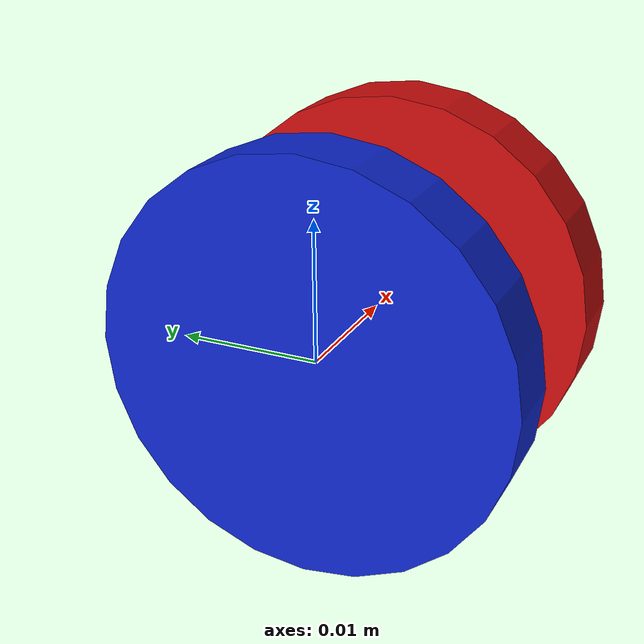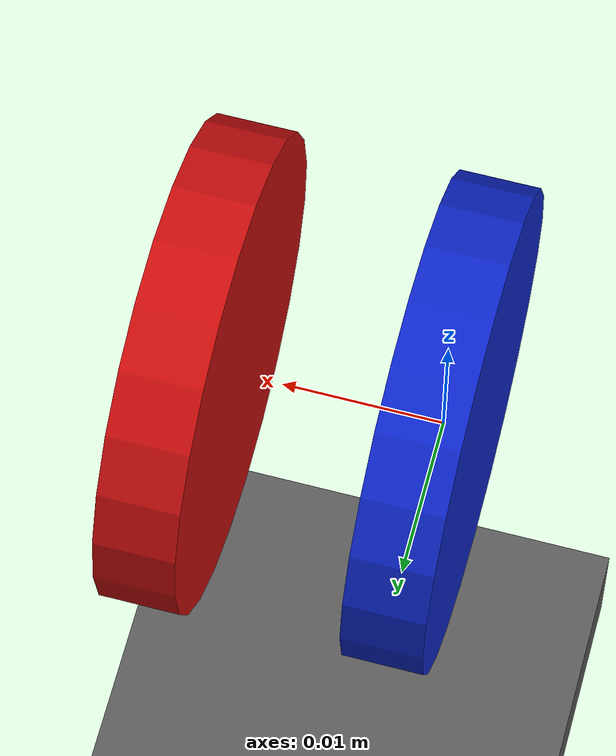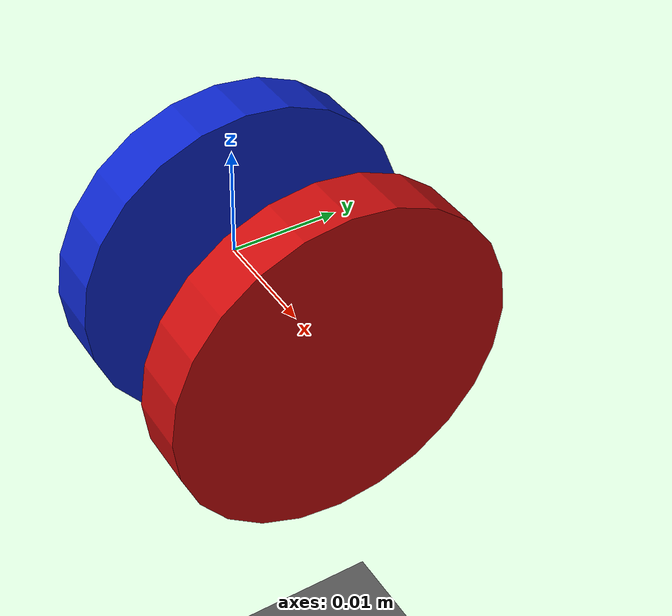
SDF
<?xml version="1.0" ?>
<sdf version="1.9">
  <world name="magnetic_docking">
    <physics name="default_physics" type="ode">
      <max_step_size>0.001</max_step_size>
      <real_time_factor>1.0</real_time_factor>
      <real_time_update_rate>1000</real_time_update_rate>
    </physics>
    <gravity>0 0 0</gravity>

    <plugin filename="gz-sim-physics-system" name="gz::sim::systems::Physics"/>
    <plugin filename="gz-sim-user-commands-system" name="gz::sim::systems::UserCommands"/>
    <plugin filename="gz-sim-scene-broadcaster-system" name="gz::sim::systems::SceneBroadcaster"/>

    <plugin filename="libMagneticDockingSystem.so" name="custom::MagneticDockingSystem">
      <model_a>fixed_magnet</model_a>
      <link_a>magnet_link</link_a>
      <offset_a>0.0025 0 0</offset_a>
      <axis_a>1 0 0</axis_a>
      <model_b>test_body</model_b>
      <link_b>body_link</link_b>
      <offset_b>-0.0025 0 0</offset_b>
      <axis_b>1 0 0</axis_b>
      <capture_distance>0.15</capture_distance>
      <magnet_radius>0.015</magnet_radius>
      <magnet_length>0.005</magnet_length>
      <remanence>0.8</remanence>
      <damping>3.0</damping>
    </plugin>

    <model name="fixed_magnet">
      <static>true</static>
      <pose>0 0 0 0 0 0</pose>
      <link name="magnet_link">
        <collision name="collision">
          <pose>0 0 0 0 1.57079632679 0</pose>
          <geometry><cylinder><radius>0.015</radius><length>0.005</length></cylinder></geometry>
        </collision>
        <visual name="visual">
          <pose>0 0 0 0 1.57079632679 0</pose>
          <geometry><cylinder><radius>0.015</radius><length>0.005</length></cylinder></geometry>
          <material>
            <ambient>0.05 0.15 0.8 1</ambient>
            <diffuse>0.05 0.15 0.8 1</diffuse>
          </material>
        </visual>
      </link>
    </model>

    <model name="test_body">
      <pose>0.015 0 0 0 0 0</pose>
      <link name="body_link">
        <inertial>
          <mass>0.5</mass>
          <inertia>
            <ixx>0.000533333</ixx>
            <iyy>0.000370833</iyy>
            <izz>0.000370833</izz>
            <ixy>0</ixy>
            <ixz>0</ixz>
            <iyz>0</iyz>
          </inertia>
        </inertial>
        <collision name="collision">
          <pose>0 0 0 0 1.57079632679 0</pose>
          <geometry><cylinder><radius>0.015</radius><length>0.005</length></cylinder></geometry>
        </collision>
        <visual name="visual">
          <pose>0 0 0 0 1.57079632679 0</pose>
          <geometry><cylinder><radius>0.015</radius><length>0.005</length></cylinder></geometry>
          <material>
            <ambient>0.8 0.05 0.05 1</ambient>
            <diffuse>0.8 0.05 0.05 1</diffuse>
          </material>
        </visual>
      </link>
    </model>

    <model name="reference_floor">
      <static>true</static>
      <pose>0 0 -0.07 0 0 0</pose>
      <link name="floor_link">
        <visual name="visual">
          <geometry>
            <box><size>1.0 0.5 0.01</size></box>
          </geometry>
          <material>
            <ambient>0.35 0.35 0.35 1</ambient>
            <diffuse>0.35 0.35 0.35 1</diffuse>
          </material>
        </visual>
      </link>
    </model>

    <light name="sun" type="directional">
      <pose>0 0 10 0 0 0</pose>
      <cast_shadows>true</cast_shadows>
      <direction>-0.5 0.2 -1</direction>
      <diffuse>0.8 0.8 0.8 1</diffuse>
      <specular>0.2 0.2 0.2 1</specular>
    </light>
  </world>
</sdf>
